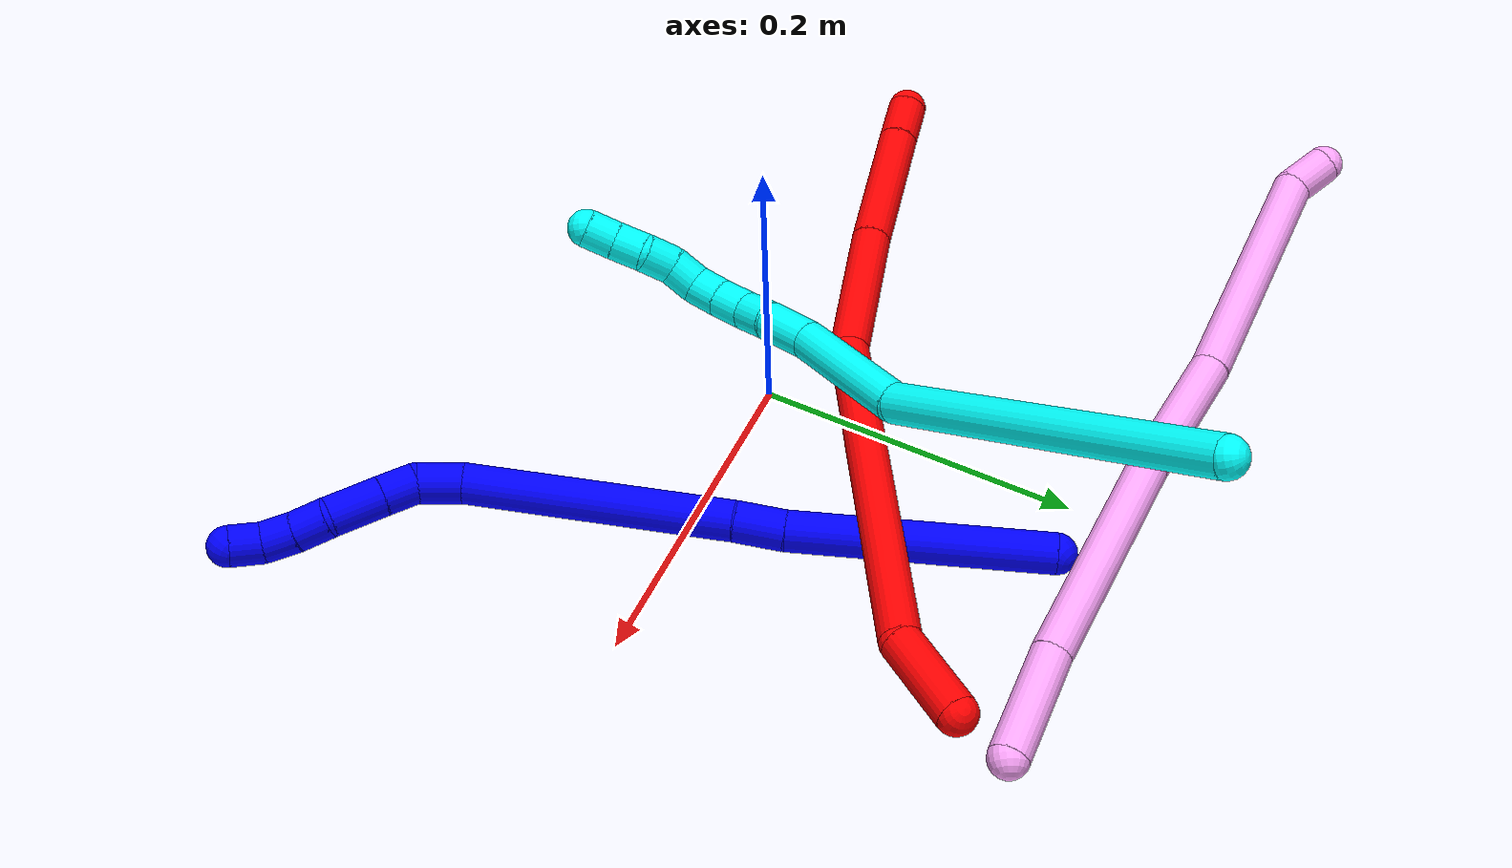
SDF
<sdf version="1.7">
 <world name="default">
  <model name="1">
   <static>0</static>
   <link name="1">
    <collision name="collision-cylinder-e_1_1_4">
     <pose>0.009369 -0.051583 0.060168 0.708725 0.117675 0.043581</pose>
     <geometry><cylinder><radius>0.0125</radius><length>0.15961</length></cylinder></geometry>
     <surface>
      <friction><ode><mu>1.16</mu><mu2>1.16</mu2><slip1>0</slip1><slip2>0</slip2></ode></friction>
      <contact><ode><kp>1e+06</kp><kd>1</kd><max_vel>0</max_vel><min_depth>0.001</min_depth></ode></contact>
     </surface>
    </collision>
    <visual name="visual-cylinder-e_1_1_4">
     <pose>0.009369 -0.051583 0.060168 0.708725 0.117675 0.043581</pose>
     <geometry><cylinder><radius>0.0125</radius><length>0.15961</length></cylinder></geometry>
     <material><ambient>0 0 1 1</ambient></material>
    </visual>
    <collision name="collision-cylinder-e_2_4_5">
     <pose>0.021256 -0.111806 0.132541 0.616037 0.166754 0.053162</pose>
     <geometry><cylinder><radius>0.0125</radius><length>0.030326</length></cylinder></geometry>
     <surface>
      <friction><ode><mu>1.16</mu><mu2>1.16</mu2><slip1>0</slip1><slip2>0</slip2></ode></friction>
      <contact><ode><kp>1e+06</kp><kd>1</kd><max_vel>0</max_vel><min_depth>0.001</min_depth></ode></contact>
     </surface>
    </collision>
    <visual name="visual-cylinder-e_2_4_5">
     <pose>0.021256 -0.111806 0.132541 0.616037 0.166754 0.053162</pose>
     <geometry><cylinder><radius>0.0125</radius><length>0.030326</length></cylinder></geometry>
     <material><ambient>0 0 1 1</ambient></material>
    </visual>
    <collision name="collision-cylinder-e_3_5_6">
     <pose>0.029131 -0.167474 0.212878 0.604143 0.06464 0.020149</pose>
     <geometry><cylinder><radius>0.0125</radius><length>0.16592</length></cylinder></geometry>
     <surface>
      <friction><ode><mu>1.16</mu><mu2>1.16</mu2><slip1>0</slip1><slip2>0</slip2></ode></friction>
      <contact><ode><kp>1e+06</kp><kd>1</kd><max_vel>0</max_vel><min_depth>0.001</min_depth></ode></contact>
     </surface>
    </collision>
    <visual name="visual-cylinder-e_3_5_6">
     <pose>0.029131 -0.167474 0.212878 0.604143 0.06464 0.020149</pose>
     <geometry><cylinder><radius>0.0125</radius><length>0.16592</length></cylinder></geometry>
     <material><ambient>0 0 1 1</ambient></material>
    </visual>
    <collision name="collision-cylinder-e_4_6_7">
     <pose>0.038065 -0.225424 0.289294 0.921947 0.255109 0.127223</pose>
     <geometry><cylinder><radius>0.0125</radius><length>0.028333</length></cylinder></geometry>
     <surface>
      <friction><ode><mu>1.16</mu><mu2>1.16</mu2><slip1>0</slip1><slip2>0</slip2></ode></friction>
      <contact><ode><kp>1e+06</kp><kd>1</kd><max_vel>0</max_vel><min_depth>0.001</min_depth></ode></contact>
     </surface>
    </collision>
    <visual name="visual-cylinder-e_4_6_7">
     <pose>0.038065 -0.225424 0.289294 0.921947 0.255109 0.127223</pose>
     <geometry><cylinder><radius>0.0125</radius><length>0.028333</length></cylinder></geometry>
     <material><ambient>0 0 1 1</ambient></material>
    </visual>
    <collision name="collision-cylinder-e_5_7_8">
     <pose>0.042715 -0.246571 0.300611 1.28237 0.100468 0.075016</pose>
     <geometry><cylinder><radius>0.0125</radius><length>0.021439</length></cylinder></geometry>
     <surface>
      <friction><ode><mu>1.16</mu><mu2>1.16</mu2><slip1>0</slip1><slip2>0</slip2></ode></friction>
      <contact><ode><kp>1e+06</kp><kd>1</kd><max_vel>0</max_vel><min_depth>0.001</min_depth></ode></contact>
     </surface>
    </collision>
    <visual name="visual-cylinder-e_5_7_8">
     <pose>0.042715 -0.246571 0.300611 1.28237 0.100468 0.075016</pose>
     <geometry><cylinder><radius>0.0125</radius><length>0.021439</length></cylinder></geometry>
     <material><ambient>0 0 1 1</ambient></material>
    </visual>
    <collision name="collision-cylinder-e_6_8_9">
     <pose>0.045321 -0.272715 0.308136 1.2958 0.092292 0.069876</pose>
     <geometry><cylinder><radius>0.0125</radius><length>0.033223</length></cylinder></geometry>
     <surface>
      <friction><ode><mu>1.16</mu><mu2>1.16</mu2><slip1>0</slip1><slip2>0</slip2></ode></friction>
      <contact><ode><kp>1e+06</kp><kd>1</kd><max_vel>0</max_vel><min_depth>0.001</min_depth></ode></contact>
     </surface>
    </collision>
    <visual name="visual-cylinder-e_6_8_9">
     <pose>0.045321 -0.272715 0.308136 1.2958 0.092292 0.069876</pose>
     <geometry><cylinder><radius>0.0125</radius><length>0.033223</length></cylinder></geometry>
     <material><ambient>0 0 1 1</ambient></material>
    </visual>
    <collision name="collision-cylinder-e_7_9_10">
     <pose>0.045185 -0.297734 0.317002 1.12268 -0.163666 -0.103056</pose>
     <geometry><cylinder><radius>0.0125</radius><length>0.020468</length></cylinder></geometry>
     <surface>
      <friction><ode><mu>1.16</mu><mu2>1.16</mu2><slip1>0</slip1><slip2>0</slip2></ode></friction>
      <contact><ode><kp>1e+06</kp><kd>1</kd><max_vel>0</max_vel><min_depth>0.001</min_depth></ode></contact>
     </surface>
    </collision>
    <visual name="visual-cylinder-e_7_9_10">
     <pose>0.045185 -0.297734 0.317002 1.12268 -0.163666 -0.103056</pose>
     <geometry><cylinder><radius>0.0125</radius><length>0.020468</length></cylinder></geometry>
     <material><ambient>0 0 1 1</ambient></material>
    </visual>
    <collision name="collision-cylinder-e_8_10_11">
     <pose>0.042504 -0.315732 0.326353 1.06082 -0.099034 -0.058111</pose>
     <geometry><cylinder><radius>0.0125</radius><length>0.02049</length></cylinder></geometry>
     <surface>
      <friction><ode><mu>1.16</mu><mu2>1.16</mu2><slip1>0</slip1><slip2>0</slip2></ode></friction>
      <contact><ode><kp>1e+06</kp><kd>1</kd><max_vel>0</max_vel><min_depth>0.001</min_depth></ode></contact>
     </surface>
    </collision>
    <visual name="visual-cylinder-e_8_10_11">
     <pose>0.042504 -0.315732 0.326353 1.06082 -0.099034 -0.058111</pose>
     <geometry><cylinder><radius>0.0125</radius><length>0.02049</length></cylinder></geometry>
     <material><ambient>0 0 1 1</ambient></material>
    </visual>
    <collision name="collision-cylinder-e_9_11_2">
     <pose>0.044214 -0.333122 0.336061 1.06251 0.273032 0.161089</pose>
     <geometry><cylinder><radius>0.0125</radius><length>0.020191</length></cylinder></geometry>
     <surface>
      <friction><ode><mu>1.16</mu><mu2>1.16</mu2><slip1>0</slip1><slip2>0</slip2></ode></friction>
      <contact><ode><kp>1e+06</kp><kd>1</kd><max_vel>0</max_vel><min_depth>0.001</min_depth></ode></contact>
     </surface>
    </collision>
    <visual name="visual-cylinder-e_9_11_2">
     <pose>0.044214 -0.333122 0.336061 1.06251 0.273032 0.161089</pose>
     <geometry><cylinder><radius>0.0125</radius><length>0.020191</length></cylinder></geometry>
     <material><ambient>0 0 1 1</ambient></material>
    </visual>
    <collision name="collision-sphere-2">
     <pose>0.046936 -0.341615 0.340793 0 -0 0</pose>
     <geometry><sphere><radius>0.0125</radius></sphere></geometry>
     <surface>
      <friction><ode><mu>1.16</mu><mu2>1.16</mu2><slip1>0</slip1><slip2>0</slip2></ode></friction>
      <contact><ode><kp>1e+06</kp><kd>1</kd><max_vel>0</max_vel><min_depth>0.001</min_depth></ode></contact>
     </surface>
    </collision>
    <visual name="visual-sphere-2">
     <pose>0.046936 -0.341615 0.340793 0 -0 0</pose>
     <geometry><sphere><radius>0.0125</radius></sphere></geometry>
     <material><ambient>0 0 1 1</ambient></material>
    </visual>
    <collision name="collision-sphere-11">
     <pose>0.041491 -0.324629 0.33133 0 -0 0</pose>
     <geometry><sphere><radius>0.0125</radius></sphere></geometry>
     <surface>
      <friction><ode><mu>1.16</mu><mu2>1.16</mu2><slip1>0</slip1><slip2>0</slip2></ode></friction>
      <contact><ode><kp>1e+06</kp><kd>1</kd><max_vel>0</max_vel><min_depth>0.001</min_depth></ode></contact>
     </surface>
    </collision>
    <visual name="visual-sphere-11">
     <pose>0.041491 -0.324629 0.33133 0 -0 0</pose>
     <geometry><sphere><radius>0.0125</radius></sphere></geometry>
     <material><ambient>0 0 1 1</ambient></material>
    </visual>
    <collision name="collision-sphere-10">
     <pose>0.043517 -0.306835 0.321377 0 -0 0</pose>
     <geometry><sphere><radius>0.0125</radius></sphere></geometry>
     <surface>
      <friction><ode><mu>1.16</mu><mu2>1.16</mu2><slip1>0</slip1><slip2>0</slip2></ode></friction>
      <contact><ode><kp>1e+06</kp><kd>1</kd><max_vel>0</max_vel><min_depth>0.001</min_depth></ode></contact>
     </surface>
    </collision>
    <visual name="visual-sphere-10">
     <pose>0.043517 -0.306835 0.321377 0 -0 0</pose>
     <geometry><sphere><radius>0.0125</radius></sphere></geometry>
     <material><ambient>0 0 1 1</ambient></material>
    </visual>
    <collision name="collision-sphere-9">
     <pose>0.046852 -0.288634 0.312627 0 -0 0</pose>
     <geometry><sphere><radius>0.0125</radius></sphere></geometry>
     <surface>
      <friction><ode><mu>1.16</mu><mu2>1.16</mu2><slip1>0</slip1><slip2>0</slip2></ode></friction>
      <contact><ode><kp>1e+06</kp><kd>1</kd><max_vel>0</max_vel><min_depth>0.001</min_depth></ode></contact>
     </surface>
    </collision>
    <visual name="visual-sphere-9">
     <pose>0.046852 -0.288634 0.312627 0 -0 0</pose>
     <geometry><sphere><radius>0.0125</radius></sphere></geometry>
     <material><ambient>0 0 1 1</ambient></material>
    </visual>
    <collision name="collision-sphere-4">
     <pose>0.018739 -0.103167 0.120337 0 -0 0</pose>
     <geometry><sphere><radius>0.0125</radius></sphere></geometry>
     <surface>
      <friction><ode><mu>1.16</mu><mu2>1.16</mu2><slip1>0</slip1><slip2>0</slip2></ode></friction>
      <contact><ode><kp>1e+06</kp><kd>1</kd><max_vel>0</max_vel><min_depth>0.001</min_depth></ode></contact>
     </surface>
    </collision>
    <visual name="visual-sphere-4">
     <pose>0.018739 -0.103167 0.120337 0 -0 0</pose>
     <geometry><sphere><radius>0.0125</radius></sphere></geometry>
     <material><ambient>0 0 1 1</ambient></material>
    </visual>
    <collision name="collision-sphere-1">
     <geometry><sphere><radius>0.0125</radius></sphere></geometry>
     <surface>
      <friction><ode><mu>1.16</mu><mu2>1.16</mu2><slip1>0</slip1><slip2>0</slip2></ode></friction>
      <contact><ode><kp>1e+06</kp><kd>1</kd><max_vel>0</max_vel><min_depth>0.001</min_depth></ode></contact>
     </surface>
    </collision>
    <visual name="visual-sphere-1">
     <geometry><sphere><radius>0.0125</radius></sphere></geometry>
     <material><ambient>0 0 1 1</ambient></material>
    </visual>
    <collision name="collision-sphere-8">
     <pose>0.04379 -0.256795 0.303644 0 -0 0</pose>
     <geometry><sphere><radius>0.0125</radius></sphere></geometry>
     <surface>
      <friction><ode><mu>1.16</mu><mu2>1.16</mu2><slip1>0</slip1><slip2>0</slip2></ode></friction>
      <contact><ode><kp>1e+06</kp><kd>1</kd><max_vel>0</max_vel><min_depth>0.001</min_depth></ode></contact>
     </surface>
    </collision>
    <visual name="visual-sphere-8">
     <pose>0.04379 -0.256795 0.303644 0 -0 0</pose>
     <geometry><sphere><radius>0.0125</radius></sphere></geometry>
     <material><ambient>0 0 1 1</ambient></material>
    </visual>
    <collision name="collision-sphere-5">
     <pose>0.023773 -0.120446 0.144745 0 -0 0</pose>
     <geometry><sphere><radius>0.0125</radius></sphere></geometry>
     <surface>
      <friction><ode><mu>1.16</mu><mu2>1.16</mu2><slip1>0</slip1><slip2>0</slip2></ode></friction>
      <contact><ode><kp>1e+06</kp><kd>1</kd><max_vel>0</max_vel><min_depth>0.001</min_depth></ode></contact>
     </surface>
    </collision>
    <visual name="visual-sphere-5">
     <pose>0.023773 -0.120446 0.144745 0 -0 0</pose>
     <geometry><sphere><radius>0.0125</radius></sphere></geometry>
     <material><ambient>0 0 1 1</ambient></material>
    </visual>
    <collision name="collision-sphere-6">
     <pose>0.03449 -0.214501 0.28101 0 -0 0</pose>
     <geometry><sphere><radius>0.0125</radius></sphere></geometry>
     <surface>
      <friction><ode><mu>1.16</mu><mu2>1.16</mu2><slip1>0</slip1><slip2>0</slip2></ode></friction>
      <contact><ode><kp>1e+06</kp><kd>1</kd><max_vel>0</max_vel><min_depth>0.001</min_depth></ode></contact>
     </surface>
    </collision>
    <visual name="visual-sphere-6">
     <pose>0.03449 -0.214501 0.28101 0 -0 0</pose>
     <geometry><sphere><radius>0.0125</radius></sphere></geometry>
     <material><ambient>0 0 1 1</ambient></material>
    </visual>
    <collision name="collision-sphere-7">
     <pose>0.04164 -0.236346 0.297577 0 -0 0</pose>
     <geometry><sphere><radius>0.0125</radius></sphere></geometry>
     <surface>
      <friction><ode><mu>1.16</mu><mu2>1.16</mu2><slip1>0</slip1><slip2>0</slip2></ode></friction>
      <contact><ode><kp>1e+06</kp><kd>1</kd><max_vel>0</max_vel><min_depth>0.001</min_depth></ode></contact>
     </surface>
    </collision>
    <visual name="visual-sphere-7">
     <pose>0.04164 -0.236346 0.297577 0 -0 0</pose>
     <geometry><sphere><radius>0.0125</radius></sphere></geometry>
     <material><ambient>0 0 1 1</ambient></material>
    </visual>
    <inertial>
     <pose>0.026324 -0.158868 0.187566 0 -0 0</pose>
     <mass>0.5</mass>
     <inertia>
      <ixx>0.000773</ixx>
      <ixy>0</ixy>
      <ixz>0</ixz>
      <iyy>0.000587</iyy>
      <iyz>0</iyz>
      <izz>0.000416</izz>
     </inertia>
    </inertial>
   </link>
   <pose>0.040309 0.20731 0.011522 2.86304 -1.46933 -1.63845</pose>
  </model>
  <model name="2">
   <static>0</static>
   <link name="2">
    <collision name="collision-cylinder-e_1_1_4">
     <pose>-0.014062 -0.019936 -0.013177 2.15486 -0.531861 -0.937749</pose>
     <geometry><cylinder><radius>0.0125</radius><length>0.055455</length></cylinder></geometry>
     <surface>
      <friction><ode><mu>1.16</mu><mu2>1.16</mu2><slip1>0</slip1><slip2>0</slip2></ode></friction>
      <contact><ode><kp>1e+06</kp><kd>1</kd><max_vel>0</max_vel><min_depth>0.001</min_depth></ode></contact>
     </surface>
    </collision>
    <visual name="visual-cylinder-e_1_1_4">
     <pose>-0.014062 -0.019936 -0.013177 2.15486 -0.531861 -0.937749</pose>
     <geometry><cylinder><radius>0.0125</radius><length>0.055455</length></cylinder></geometry>
     <material><ambient>1 0 0 1</ambient></material>
    </visual>
    <collision name="collision-cylinder-e_2_4_5">
     <pose>-0.123648 -0.088109 -0.081205 2.42026 -0.917981 -1.83781</pose>
     <geometry><cylinder><radius>0.0125</radius><length>0.240502</length></cylinder></geometry>
     <surface>
      <friction><ode><mu>1.16</mu><mu2>1.16</mu2><slip1>0</slip1><slip2>0</slip2></ode></friction>
      <contact><ode><kp>1e+06</kp><kd>1</kd><max_vel>0</max_vel><min_depth>0.001</min_depth></ode></contact>
     </surface>
    </collision>
    <visual name="visual-cylinder-e_2_4_5">
     <pose>-0.123648 -0.088109 -0.081205 2.42026 -0.917981 -1.83781</pose>
     <geometry><cylinder><radius>0.0125</radius><length>0.240502</length></cylinder></geometry>
     <material><ambient>1 0 0 1</ambient></material>
    </visual>
    <collision name="collision-cylinder-e_3_5_6">
     <pose>-0.261452 -0.147818 -0.14336 2.13776 -1.25957 -1.85073</pose>
     <geometry><cylinder><radius>0.0125</radius><length>0.088827</length></cylinder></geometry>
     <surface>
      <friction><ode><mu>1.16</mu><mu2>1.16</mu2><slip1>0</slip1><slip2>0</slip2></ode></friction>
      <contact><ode><kp>1e+06</kp><kd>1</kd><max_vel>0</max_vel><min_depth>0.001</min_depth></ode></contact>
     </surface>
    </collision>
    <visual name="visual-cylinder-e_3_5_6">
     <pose>-0.261452 -0.147818 -0.14336 2.13776 -1.25957 -1.85073</pose>
     <geometry><cylinder><radius>0.0125</radius><length>0.088827</length></cylinder></geometry>
     <material><ambient>1 0 0 1</ambient></material>
    </visual>
    <collision name="collision-cylinder-e_4_6_7">
     <pose>-0.345279 -0.168411 -0.156673 2.15333 -1.31374 -1.922</pose>
     <geometry><cylinder><radius>0.0125</radius><length>0.085916</length></cylinder></geometry>
     <surface>
      <friction><ode><mu>1.16</mu><mu2>1.16</mu2><slip1>0</slip1><slip2>0</slip2></ode></friction>
      <contact><ode><kp>1e+06</kp><kd>1</kd><max_vel>0</max_vel><min_depth>0.001</min_depth></ode></contact>
     </surface>
    </collision>
    <visual name="visual-cylinder-e_4_6_7">
     <pose>-0.345279 -0.168411 -0.156673 2.15333 -1.31374 -1.922</pose>
     <geometry><cylinder><radius>0.0125</radius><length>0.085916</length></cylinder></geometry>
     <material><ambient>1 0 0 1</ambient></material>
    </visual>
    <collision name="collision-cylinder-e_5_7_2">
     <pose>-0.401028 -0.180403 -0.164839 2.2152 -1.32303 -2.00083</pose>
     <geometry><cylinder><radius>0.0125</radius><length>0.0293</length></cylinder></geometry>
     <surface>
      <friction><ode><mu>1.16</mu><mu2>1.16</mu2><slip1>0</slip1><slip2>0</slip2></ode></friction>
      <contact><ode><kp>1e+06</kp><kd>1</kd><max_vel>0</max_vel><min_depth>0.001</min_depth></ode></contact>
     </surface>
    </collision>
    <visual name="visual-cylinder-e_5_7_2">
     <pose>-0.401028 -0.180403 -0.164839 2.2152 -1.32303 -2.00083</pose>
     <geometry><cylinder><radius>0.0125</radius><length>0.0293</length></cylinder></geometry>
     <material><ambient>1 0 0 1</ambient></material>
    </visual>
    <collision name="collision-sphere-2">
     <pose>-0.415231 -0.183275 -0.166997 0 -0 0</pose>
     <geometry><sphere><radius>0.0125</radius></sphere></geometry>
     <surface>
      <friction><ode><mu>1.16</mu><mu2>1.16</mu2><slip1>0</slip1><slip2>0</slip2></ode></friction>
      <contact><ode><kp>1e+06</kp><kd>1</kd><max_vel>0</max_vel><min_depth>0.001</min_depth></ode></contact>
     </surface>
    </collision>
    <visual name="visual-sphere-2">
     <pose>-0.415231 -0.183275 -0.166997 0 -0 0</pose>
     <geometry><sphere><radius>0.0125</radius></sphere></geometry>
     <material><ambient>1 0 0 1</ambient></material>
    </visual>
    <collision name="collision-sphere-7">
     <pose>-0.386825 -0.177531 -0.162681 0 -0 0</pose>
     <geometry><sphere><radius>0.0125</radius></sphere></geometry>
     <surface>
      <friction><ode><mu>1.16</mu><mu2>1.16</mu2><slip1>0</slip1><slip2>0</slip2></ode></friction>
      <contact><ode><kp>1e+06</kp><kd>1</kd><max_vel>0</max_vel><min_depth>0.001</min_depth></ode></contact>
     </surface>
    </collision>
    <visual name="visual-sphere-7">
     <pose>-0.386825 -0.177531 -0.162681 0 -0 0</pose>
     <geometry><sphere><radius>0.0125</radius></sphere></geometry>
     <material><ambient>1 0 0 1</ambient></material>
    </visual>
    <collision name="collision-sphere-6">
     <pose>-0.303732 -0.159291 -0.150664 0 -0 0</pose>
     <geometry><sphere><radius>0.0125</radius></sphere></geometry>
     <surface>
      <friction><ode><mu>1.16</mu><mu2>1.16</mu2><slip1>0</slip1><slip2>0</slip2></ode></friction>
      <contact><ode><kp>1e+06</kp><kd>1</kd><max_vel>0</max_vel><min_depth>0.001</min_depth></ode></contact>
     </surface>
    </collision>
    <visual name="visual-sphere-6">
     <pose>-0.303732 -0.159291 -0.150664 0 -0 0</pose>
     <geometry><sphere><radius>0.0125</radius></sphere></geometry>
     <material><ambient>1 0 0 1</ambient></material>
    </visual>
    <collision name="collision-sphere-5">
     <pose>-0.219173 -0.136346 -0.136055 0 -0 0</pose>
     <geometry><sphere><radius>0.0125</radius></sphere></geometry>
     <surface>
      <friction><ode><mu>1.16</mu><mu2>1.16</mu2><slip1>0</slip1><slip2>0</slip2></ode></friction>
      <contact><ode><kp>1e+06</kp><kd>1</kd><max_vel>0</max_vel><min_depth>0.001</min_depth></ode></contact>
     </surface>
    </collision>
    <visual name="visual-sphere-5">
     <pose>-0.219173 -0.136346 -0.136055 0 -0 0</pose>
     <geometry><sphere><radius>0.0125</radius></sphere></geometry>
     <material><ambient>1 0 0 1</ambient></material>
    </visual>
    <collision name="collision-sphere-1">
     <geometry><sphere><radius>0.0125</radius></sphere></geometry>
     <surface>
      <friction><ode><mu>1.16</mu><mu2>1.16</mu2><slip1>0</slip1><slip2>0</slip2></ode></friction>
      <contact><ode><kp>1e+06</kp><kd>1</kd><max_vel>0</max_vel><min_depth>0.001</min_depth></ode></contact>
     </surface>
    </collision>
    <visual name="visual-sphere-1">
     <geometry><sphere><radius>0.0125</radius></sphere></geometry>
     <material><ambient>1 0 0 1</ambient></material>
    </visual>
    <collision name="collision-sphere-4">
     <pose>-0.028123 -0.039871 -0.026355 0 -0 0</pose>
     <geometry><sphere><radius>0.0125</radius></sphere></geometry>
     <surface>
      <friction><ode><mu>1.16</mu><mu2>1.16</mu2><slip1>0</slip1><slip2>0</slip2></ode></friction>
      <contact><ode><kp>1e+06</kp><kd>1</kd><max_vel>0</max_vel><min_depth>0.001</min_depth></ode></contact>
     </surface>
    </collision>
    <visual name="visual-sphere-4">
     <pose>-0.028123 -0.039871 -0.026355 0 -0 0</pose>
     <geometry><sphere><radius>0.0125</radius></sphere></geometry>
     <material><ambient>1 0 0 1</ambient></material>
    </visual>
    <inertial>
     <pose>-0.190313 -0.110362 -0.102571 0 -0 0</pose>
     <mass>0.5</mass>
     <inertia>
      <ixx>-0.00095</ixx>
      <ixy>0</ixy>
      <ixz>0</ixz>
      <iyy>0.000194</iyy>
      <iyz>0</iyz>
      <izz>0.001549</izz>
     </inertia>
    </inertial>
   </link>
   <pose>0.187995 0.203329 0.06188 -0.38402 0.114901 -0.035967</pose>
  </model>
  <model name="3">
   <static>0</static>
   <link name="3">
    <collision name="collision-cylinder-e_1_1_4">
     <pose>-0.028143 -0.002642 -0.112125 3.11803 -0.245846 -2.95148</pose>
     <geometry><cylinder><radius>0.0125</radius><length>0.231267</length></cylinder></geometry>
     <surface>
      <friction><ode><mu>1.16</mu><mu2>1.16</mu2><slip1>0</slip1><slip2>0</slip2></ode></friction>
      <contact><ode><kp>1e+06</kp><kd>1</kd><max_vel>0</max_vel><min_depth>0.001</min_depth></ode></contact>
     </surface>
    </collision>
    <visual name="visual-cylinder-e_1_1_4">
     <pose>-0.028143 -0.002642 -0.112125 3.11803 -0.245846 -2.95148</pose>
     <geometry><cylinder><radius>0.0125</radius><length>0.231267</length></cylinder></geometry>
     <material><ambient>0.003922 1 0.996078 1</ambient></material>
    </visual>
    <collision name="collision-cylinder-e_2_4_5">
     <pose>-0.080542 -0.011814 -0.262181 2.97111 -0.562366 -2.56632</pose>
     <geometry><cylinder><radius>0.0125</radius><length>0.090988</length></cylinder></geometry>
     <surface>
      <friction><ode><mu>1.16</mu><mu2>1.16</mu2><slip1>0</slip1><slip2>0</slip2></ode></friction>
      <contact><ode><kp>1e+06</kp><kd>1</kd><max_vel>0</max_vel><min_depth>0.001</min_depth></ode></contact>
     </surface>
    </collision>
    <visual name="visual-cylinder-e_2_4_5">
     <pose>-0.080542 -0.011814 -0.262181 2.97111 -0.562366 -2.56632</pose>
     <geometry><cylinder><radius>0.0125</radius><length>0.090988</length></cylinder></geometry>
     <material><ambient>0.003922 1 0.996078 1</ambient></material>
    </visual>
    <collision name="collision-cylinder-e_3_5_6">
     <pose>-0.110775 -0.023143 -0.315104 2.83179 -0.362802 -1.73104</pose>
     <geometry><cylinder><radius>0.0125</radius><length>0.033677</length></cylinder></geometry>
     <surface>
      <friction><ode><mu>1.16</mu><mu2>1.16</mu2><slip1>0</slip1><slip2>0</slip2></ode></friction>
      <contact><ode><kp>1e+06</kp><kd>1</kd><max_vel>0</max_vel><min_depth>0.001</min_depth></ode></contact>
     </surface>
    </collision>
    <visual name="visual-cylinder-e_3_5_6">
     <pose>-0.110775 -0.023143 -0.315104 2.83179 -0.362802 -1.73104</pose>
     <geometry><cylinder><radius>0.0125</radius><length>0.033677</length></cylinder></geometry>
     <material><ambient>0.003922 1 0.996078 1</ambient></material>
    </visual>
    <collision name="collision-cylinder-e_4_6_7">
     <pose>-0.121392 -0.029242 -0.340567 3.01809 -0.414442 -2.56955</pose>
     <geometry><cylinder><radius>0.0125</radius><length>0.023053</length></cylinder></geometry>
     <surface>
      <friction><ode><mu>1.16</mu><mu2>1.16</mu2><slip1>0</slip1><slip2>0</slip2></ode></friction>
      <contact><ode><kp>1e+06</kp><kd>1</kd><max_vel>0</max_vel><min_depth>0.001</min_depth></ode></contact>
     </surface>
    </collision>
    <visual name="visual-cylinder-e_4_6_7">
     <pose>-0.121392 -0.029242 -0.340567 3.01809 -0.414442 -2.56955</pose>
     <geometry><cylinder><radius>0.0125</radius><length>0.023053</length></cylinder></geometry>
     <material><ambient>0.003922 1 0.996078 1</ambient></material>
    </visual>
    <collision name="collision-cylinder-e_5_7_8">
     <pose>-0.128687 -0.034981 -0.360083 2.6854 -0.257458 -1.01735</pose>
     <geometry><cylinder><radius>0.0125</radius><length>0.020838</length></cylinder></geometry>
     <surface>
      <friction><ode><mu>1.16</mu><mu2>1.16</mu2><slip1>0</slip1><slip2>0</slip2></ode></friction>
      <contact><ode><kp>1e+06</kp><kd>1</kd><max_vel>0</max_vel><min_depth>0.001</min_depth></ode></contact>
     </surface>
    </collision>
    <visual name="visual-cylinder-e_5_7_8">
     <pose>-0.128687 -0.034981 -0.360083 2.6854 -0.257458 -1.01735</pose>
     <geometry><cylinder><radius>0.0125</radius><length>0.020838</length></cylinder></geometry>
     <material><ambient>0.003922 1 0.996078 1</ambient></material>
    </visual>
    <collision name="collision-cylinder-e_6_8_9">
     <pose>-0.133946 -0.044326 -0.377503 2.61157 -0.262257 -0.904701</pose>
     <geometry><cylinder><radius>0.0125</radius><length>0.0201</length></cylinder></geometry>
     <surface>
      <friction><ode><mu>1.16</mu><mu2>1.16</mu2><slip1>0</slip1><slip2>0</slip2></ode></friction>
      <contact><ode><kp>1e+06</kp><kd>1</kd><max_vel>0</max_vel><min_depth>0.001</min_depth></ode></contact>
     </surface>
    </collision>
    <visual name="visual-cylinder-e_6_8_9">
     <pose>-0.133946 -0.044326 -0.377503 2.61157 -0.262257 -0.904701</pose>
     <geometry><cylinder><radius>0.0125</radius><length>0.0201</length></cylinder></geometry>
     <material><ambient>0.003922 1 0.996078 1</ambient></material>
    </visual>
    <collision name="collision-cylinder-e_7_9_10">
     <pose>-0.137749 -0.057747 -0.391048 2.11657 -0.119672 -0.212145</pose>
     <geometry><cylinder><radius>0.0125</radius><length>0.020064</length></cylinder></geometry>
     <surface>
      <friction><ode><mu>1.16</mu><mu2>1.16</mu2><slip1>0</slip1><slip2>0</slip2></ode></friction>
      <contact><ode><kp>1e+06</kp><kd>1</kd><max_vel>0</max_vel><min_depth>0.001</min_depth></ode></contact>
     </surface>
    </collision>
    <visual name="visual-cylinder-e_7_9_10">
     <pose>-0.137749 -0.057747 -0.391048 2.11657 -0.119672 -0.212145</pose>
     <geometry><cylinder><radius>0.0125</radius><length>0.020064</length></cylinder></geometry>
     <material><ambient>0.003922 1 0.996078 1</ambient></material>
    </visual>
    <collision name="collision-cylinder-e_8_10_11">
     <pose>-0.136866 -0.0747 -0.401167 2.10112 0.2095 0.363002</pose>
     <geometry><cylinder><radius>0.0125</radius><length>0.020005</length></cylinder></geometry>
     <surface>
      <friction><ode><mu>1.16</mu><mu2>1.16</mu2><slip1>0</slip1><slip2>0</slip2></ode></friction>
      <contact><ode><kp>1e+06</kp><kd>1</kd><max_vel>0</max_vel><min_depth>0.001</min_depth></ode></contact>
     </surface>
    </collision>
    <visual name="visual-cylinder-e_8_10_11">
     <pose>-0.136866 -0.0747 -0.401167 2.10112 0.2095 0.363002</pose>
     <geometry><cylinder><radius>0.0125</radius><length>0.020005</length></cylinder></geometry>
     <material><ambient>0.003922 1 0.996078 1</ambient></material>
    </visual>
    <collision name="collision-cylinder-e_9_11_12">
     <pose>-0.134669 -0.089691 -0.413671 2.42721 0.011711 0.031379</pose>
     <geometry><cylinder><radius>0.0125</radius><length>0.020001</length></cylinder></geometry>
     <surface>
      <friction><ode><mu>1.16</mu><mu2>1.16</mu2><slip1>0</slip1><slip2>0</slip2></ode></friction>
      <contact><ode><kp>1e+06</kp><kd>1</kd><max_vel>0</max_vel><min_depth>0.001</min_depth></ode></contact>
     </surface>
    </collision>
    <visual name="visual-cylinder-e_9_11_12">
     <pose>-0.134669 -0.089691 -0.413671 2.42721 0.011711 0.031379</pose>
     <geometry><cylinder><radius>0.0125</radius><length>0.020001</length></cylinder></geometry>
     <material><ambient>0.003922 1 0.996078 1</ambient></material>
    </visual>
    <collision name="collision-cylinder-e_10_12_2">
     <pose>-0.133562 -0.103883 -0.427605 2.26648 0.099101 0.211231</pose>
     <geometry><cylinder><radius>0.0125</radius><length>0.020006</length></cylinder></geometry>
     <surface>
      <friction><ode><mu>1.16</mu><mu2>1.16</mu2><slip1>0</slip1><slip2>0</slip2></ode></friction>
      <contact><ode><kp>1e+06</kp><kd>1</kd><max_vel>0</max_vel><min_depth>0.001</min_depth></ode></contact>
     </surface>
    </collision>
    <visual name="visual-cylinder-e_10_12_2">
     <pose>-0.133562 -0.103883 -0.427605 2.26648 0.099101 0.211231</pose>
     <geometry><cylinder><radius>0.0125</radius><length>0.020006</length></cylinder></geometry>
     <material><ambient>0.003922 1 0.996078 1</ambient></material>
    </visual>
    <collision name="collision-sphere-2">
     <pose>-0.132573 -0.111524 -0.433984 0 -0 0</pose>
     <geometry><sphere><radius>0.0125</radius></sphere></geometry>
     <surface>
      <friction><ode><mu>1.16</mu><mu2>1.16</mu2><slip1>0</slip1><slip2>0</slip2></ode></friction>
      <contact><ode><kp>1e+06</kp><kd>1</kd><max_vel>0</max_vel><min_depth>0.001</min_depth></ode></contact>
     </surface>
    </collision>
    <visual name="visual-sphere-2">
     <pose>-0.132573 -0.111524 -0.433984 0 -0 0</pose>
     <geometry><sphere><radius>0.0125</radius></sphere></geometry>
     <material><ambient>0.003922 1 0.996078 1</ambient></material>
    </visual>
    <collision name="collision-sphere-12">
     <pose>-0.134552 -0.096243 -0.421225 0 -0 0</pose>
     <geometry><sphere><radius>0.0125</radius></sphere></geometry>
     <surface>
      <friction><ode><mu>1.16</mu><mu2>1.16</mu2><slip1>0</slip1><slip2>0</slip2></ode></friction>
      <contact><ode><kp>1e+06</kp><kd>1</kd><max_vel>0</max_vel><min_depth>0.001</min_depth></ode></contact>
     </surface>
    </collision>
    <visual name="visual-sphere-12">
     <pose>-0.134552 -0.096243 -0.421225 0 -0 0</pose>
     <geometry><sphere><radius>0.0125</radius></sphere></geometry>
     <material><ambient>0.003922 1 0.996078 1</ambient></material>
    </visual>
    <collision name="collision-sphere-11">
     <pose>-0.134786 -0.08314 -0.406116 0 -0 0</pose>
     <geometry><sphere><radius>0.0125</radius></sphere></geometry>
     <surface>
      <friction><ode><mu>1.16</mu><mu2>1.16</mu2><slip1>0</slip1><slip2>0</slip2></ode></friction>
      <contact><ode><kp>1e+06</kp><kd>1</kd><max_vel>0</max_vel><min_depth>0.001</min_depth></ode></contact>
     </surface>
    </collision>
    <visual name="visual-sphere-11">
     <pose>-0.134786 -0.08314 -0.406116 0 -0 0</pose>
     <geometry><sphere><radius>0.0125</radius></sphere></geometry>
     <material><ambient>0.003922 1 0.996078 1</ambient></material>
    </visual>
    <collision name="collision-sphere-10">
     <pose>-0.138947 -0.06626 -0.396218 0 -0 0</pose>
     <geometry><sphere><radius>0.0125</radius></sphere></geometry>
     <surface>
      <friction><ode><mu>1.16</mu><mu2>1.16</mu2><slip1>0</slip1><slip2>0</slip2></ode></friction>
      <contact><ode><kp>1e+06</kp><kd>1</kd><max_vel>0</max_vel><min_depth>0.001</min_depth></ode></contact>
     </surface>
    </collision>
    <visual name="visual-sphere-10">
     <pose>-0.138947 -0.06626 -0.396218 0 -0 0</pose>
     <geometry><sphere><radius>0.0125</radius></sphere></geometry>
     <material><ambient>0.003922 1 0.996078 1</ambient></material>
    </visual>
    <collision name="collision-sphere-9">
     <pose>-0.136551 -0.049234 -0.385878 0 -0 0</pose>
     <geometry><sphere><radius>0.0125</radius></sphere></geometry>
     <surface>
      <friction><ode><mu>1.16</mu><mu2>1.16</mu2><slip1>0</slip1><slip2>0</slip2></ode></friction>
      <contact><ode><kp>1e+06</kp><kd>1</kd><max_vel>0</max_vel><min_depth>0.001</min_depth></ode></contact>
     </surface>
    </collision>
    <visual name="visual-sphere-9">
     <pose>-0.136551 -0.049234 -0.385878 0 -0 0</pose>
     <geometry><sphere><radius>0.0125</radius></sphere></geometry>
     <material><ambient>0.003922 1 0.996078 1</ambient></material>
    </visual>
    <collision name="collision-sphere-4">
     <pose>-0.056285 -0.005284 -0.224251 0 -0 0</pose>
     <geometry><sphere><radius>0.0125</radius></sphere></geometry>
     <surface>
      <friction><ode><mu>1.16</mu><mu2>1.16</mu2><slip1>0</slip1><slip2>0</slip2></ode></friction>
      <contact><ode><kp>1e+06</kp><kd>1</kd><max_vel>0</max_vel><min_depth>0.001</min_depth></ode></contact>
     </surface>
    </collision>
    <visual name="visual-sphere-4">
     <pose>-0.056285 -0.005284 -0.224251 0 -0 0</pose>
     <geometry><sphere><radius>0.0125</radius></sphere></geometry>
     <material><ambient>0.003922 1 0.996078 1</ambient></material>
    </visual>
    <collision name="collision-sphere-1">
     <geometry><sphere><radius>0.0125</radius></sphere></geometry>
     <surface>
      <friction><ode><mu>1.16</mu><mu2>1.16</mu2><slip1>0</slip1><slip2>0</slip2></ode></friction>
      <contact><ode><kp>1e+06</kp><kd>1</kd><max_vel>0</max_vel><min_depth>0.001</min_depth></ode></contact>
     </surface>
    </collision>
    <visual name="visual-sphere-1">
     <geometry><sphere><radius>0.0125</radius></sphere></geometry>
     <material><ambient>0.003922 1 0.996078 1</ambient></material>
    </visual>
    <collision name="collision-sphere-8">
     <pose>-0.13134 -0.039419 -0.369128 0 -0 0</pose>
     <geometry><sphere><radius>0.0125</radius></sphere></geometry>
     <surface>
      <friction><ode><mu>1.16</mu><mu2>1.16</mu2><slip1>0</slip1><slip2>0</slip2></ode></friction>
      <contact><ode><kp>1e+06</kp><kd>1</kd><max_vel>0</max_vel><min_depth>0.001</min_depth></ode></contact>
     </surface>
    </collision>
    <visual name="visual-sphere-8">
     <pose>-0.13134 -0.039419 -0.369128 0 -0 0</pose>
     <geometry><sphere><radius>0.0125</radius></sphere></geometry>
     <material><ambient>0.003922 1 0.996078 1</ambient></material>
    </visual>
    <collision name="collision-sphere-5">
     <pose>-0.104799 -0.018344 -0.30011 0 -0 0</pose>
     <geometry><sphere><radius>0.0125</radius></sphere></geometry>
     <surface>
      <friction><ode><mu>1.16</mu><mu2>1.16</mu2><slip1>0</slip1><slip2>0</slip2></ode></friction>
      <contact><ode><kp>1e+06</kp><kd>1</kd><max_vel>0</max_vel><min_depth>0.001</min_depth></ode></contact>
     </surface>
    </collision>
    <visual name="visual-sphere-5">
     <pose>-0.104799 -0.018344 -0.30011 0 -0 0</pose>
     <geometry><sphere><radius>0.0125</radius></sphere></geometry>
     <material><ambient>0.003922 1 0.996078 1</ambient></material>
    </visual>
    <collision name="collision-sphere-6">
     <pose>-0.116751 -0.027942 -0.330097 0 -0 0</pose>
     <geometry><sphere><radius>0.0125</radius></sphere></geometry>
     <surface>
      <friction><ode><mu>1.16</mu><mu2>1.16</mu2><slip1>0</slip1><slip2>0</slip2></ode></friction>
      <contact><ode><kp>1e+06</kp><kd>1</kd><max_vel>0</max_vel><min_depth>0.001</min_depth></ode></contact>
     </surface>
    </collision>
    <visual name="visual-sphere-6">
     <pose>-0.116751 -0.027942 -0.330097 0 -0 0</pose>
     <geometry><sphere><radius>0.0125</radius></sphere></geometry>
     <material><ambient>0.003922 1 0.996078 1</ambient></material>
    </visual>
    <collision name="collision-sphere-7">
     <pose>-0.126034 -0.030542 -0.351038 0 -0 0</pose>
     <geometry><sphere><radius>0.0125</radius></sphere></geometry>
     <surface>
      <friction><ode><mu>1.16</mu><mu2>1.16</mu2><slip1>0</slip1><slip2>0</slip2></ode></friction>
      <contact><ode><kp>1e+06</kp><kd>1</kd><max_vel>0</max_vel><min_depth>0.001</min_depth></ode></contact>
     </surface>
    </collision>
    <visual name="visual-sphere-7">
     <pose>-0.126034 -0.030542 -0.351038 0 -0 0</pose>
     <geometry><sphere><radius>0.0125</radius></sphere></geometry>
     <material><ambient>0.003922 1 0.996078 1</ambient></material>
    </visual>
    <inertial>
     <pose>-0.073214 -0.022569 -0.232081 0 -0 0</pose>
     <mass>0.5</mass>
     <inertia>
      <ixx>-0.001271</ixx>
      <ixy>0</ixy>
      <ixz>0</ixz>
      <iyy>0.000842</iyy>
      <iyz>0</iyz>
      <izz>0.000298</izz>
     </inertia>
    </inertial>
   </link>
   <pose>0.050815 0.28828 0.173105 -1.02819 -0.033788 0.080893</pose>
  </model>
  <model name="4">
   <static>0</static>
   <link name="4">
    <collision name="collision-cylinder-e_1_1_4">
     <pose>-0.016565 7.6e-05 0.031661 -0.002413 -0.482048 0.000593</pose>
     <geometry><cylinder><radius>0.0125</radius><length>0.071465</length></cylinder></geometry>
     <surface>
      <friction><ode><mu>1.16</mu><mu2>1.16</mu2><slip1>0</slip1><slip2>0</slip2></ode></friction>
      <contact><ode><kp>1e+06</kp><kd>1</kd><max_vel>0</max_vel><min_depth>0.001</min_depth></ode></contact>
     </surface>
    </collision>
    <visual name="visual-cylinder-e_1_1_4">
     <pose>-0.016565 7.6e-05 0.031661 -0.002413 -0.482048 0.000593</pose>
     <geometry><cylinder><radius>0.0125</radius><length>0.071465</length></cylinder></geometry>
     <material><ambient>1 0.65098 0.996078 1</ambient></material>
    </visual>
    <collision name="collision-cylinder-e_2_4_5">
     <pose>-0.069874 0.004847 0.124976 -0.075991 -0.536159 0.020883</pose>
     <geometry><cylinder><radius>0.0125</radius><length>0.143854</length></cylinder></geometry>
     <surface>
      <friction><ode><mu>1.16</mu><mu2>1.16</mu2><slip1>0</slip1><slip2>0</slip2></ode></friction>
      <contact><ode><kp>1e+06</kp><kd>1</kd><max_vel>0</max_vel><min_depth>0.001</min_depth></ode></contact>
     </surface>
    </collision>
    <visual name="visual-cylinder-e_2_4_5">
     <pose>-0.069874 0.004847 0.124976 -0.075991 -0.536159 0.020883</pose>
     <geometry><cylinder><radius>0.0125</radius><length>0.143854</length></cylinder></geometry>
     <material><ambient>1 0.65098 0.996078 1</ambient></material>
    </visual>
    <collision name="collision-cylinder-e_3_5_6">
     <pose>-0.131799 0.013143 0.223311 -0.097887 -0.599415 0.030271</pose>
     <geometry><cylinder><radius>0.0125</radius><length>0.089275</length></cylinder></geometry>
     <surface>
      <friction><ode><mu>1.16</mu><mu2>1.16</mu2><slip1>0</slip1><slip2>0</slip2></ode></friction>
      <contact><ode><kp>1e+06</kp><kd>1</kd><max_vel>0</max_vel><min_depth>0.001</min_depth></ode></contact>
     </surface>
    </collision>
    <visual name="visual-cylinder-e_3_5_6">
     <pose>-0.131799 0.013143 0.223311 -0.097887 -0.599415 0.030271</pose>
     <geometry><cylinder><radius>0.0125</radius><length>0.089275</length></cylinder></geometry>
     <material><ambient>1 0.65098 0.996078 1</ambient></material>
    </visual>
    <collision name="collision-cylinder-e_4_6_7">
     <pose>-0.196996 0.021563 0.333032 -0.065866 -0.500261 0.016833</pose>
     <geometry><cylinder><radius>0.0125</radius><length>0.166847</length></cylinder></geometry>
     <surface>
      <friction><ode><mu>1.16</mu><mu2>1.16</mu2><slip1>0</slip1><slip2>0</slip2></ode></friction>
      <contact><ode><kp>1e+06</kp><kd>1</kd><max_vel>0</max_vel><min_depth>0.001</min_depth></ode></contact>
     </surface>
    </collision>
    <visual name="visual-cylinder-e_4_6_7">
     <pose>-0.196996 0.021563 0.333032 -0.065866 -0.500261 0.016833</pose>
     <geometry><cylinder><radius>0.0125</radius><length>0.166847</length></cylinder></geometry>
     <material><ambient>1 0.65098 0.996078 1</ambient></material>
    </visual>
    <collision name="collision-cylinder-e_5_7_2">
     <pose>-0.247201 0.031859 0.414445 -0.579434 -0.794643 0.2489</pose>
     <geometry><cylinder><radius>0.0125</radius><length>0.02856</length></cylinder></geometry>
     <surface>
      <friction><ode><mu>1.16</mu><mu2>1.16</mu2><slip1>0</slip1><slip2>0</slip2></ode></friction>
      <contact><ode><kp>1e+06</kp><kd>1</kd><max_vel>0</max_vel><min_depth>0.001</min_depth></ode></contact>
     </surface>
    </collision>
    <visual name="visual-cylinder-e_5_7_2">
     <pose>-0.247201 0.031859 0.414445 -0.579434 -0.794643 0.2489</pose>
     <geometry><cylinder><radius>0.0125</radius><length>0.02856</length></cylinder></geometry>
     <material><ambient>1 0.65098 0.996078 1</ambient></material>
    </visual>
    <collision name="collision-sphere-2">
     <pose>-0.257391 0.037336 0.422815 0 -0 0</pose>
     <geometry><sphere><radius>0.0125</radius></sphere></geometry>
     <surface>
      <friction><ode><mu>1.16</mu><mu2>1.16</mu2><slip1>0</slip1><slip2>0</slip2></ode></friction>
      <contact><ode><kp>1e+06</kp><kd>1</kd><max_vel>0</max_vel><min_depth>0.001</min_depth></ode></contact>
     </surface>
    </collision>
    <visual name="visual-sphere-2">
     <pose>-0.257391 0.037336 0.422815 0 -0 0</pose>
     <geometry><sphere><radius>0.0125</radius></sphere></geometry>
     <material><ambient>1 0.65098 0.996078 1</ambient></material>
    </visual>
    <collision name="collision-sphere-7">
     <pose>-0.237011 0.026381 0.406074 0 -0 0</pose>
     <geometry><sphere><radius>0.0125</radius></sphere></geometry>
     <surface>
      <friction><ode><mu>1.16</mu><mu2>1.16</mu2><slip1>0</slip1><slip2>0</slip2></ode></friction>
      <contact><ode><kp>1e+06</kp><kd>1</kd><max_vel>0</max_vel><min_depth>0.001</min_depth></ode></contact>
     </surface>
    </collision>
    <visual name="visual-sphere-7">
     <pose>-0.237011 0.026381 0.406074 0 -0 0</pose>
     <geometry><sphere><radius>0.0125</radius></sphere></geometry>
     <material><ambient>1 0.65098 0.996078 1</ambient></material>
    </visual>
    <collision name="collision-sphere-6">
     <pose>-0.156982 0.016745 0.259991 0 -0 0</pose>
     <geometry><sphere><radius>0.0125</radius></sphere></geometry>
     <surface>
      <friction><ode><mu>1.16</mu><mu2>1.16</mu2><slip1>0</slip1><slip2>0</slip2></ode></friction>
      <contact><ode><kp>1e+06</kp><kd>1</kd><max_vel>0</max_vel><min_depth>0.001</min_depth></ode></contact>
     </surface>
    </collision>
    <visual name="visual-sphere-6">
     <pose>-0.156982 0.016745 0.259991 0 -0 0</pose>
     <geometry><sphere><radius>0.0125</radius></sphere></geometry>
     <material><ambient>1 0.65098 0.996078 1</ambient></material>
    </visual>
    <collision name="collision-sphere-5">
     <pose>-0.106617 0.009541 0.186632 0 -0 0</pose>
     <geometry><sphere><radius>0.0125</radius></sphere></geometry>
     <surface>
      <friction><ode><mu>1.16</mu><mu2>1.16</mu2><slip1>0</slip1><slip2>0</slip2></ode></friction>
      <contact><ode><kp>1e+06</kp><kd>1</kd><max_vel>0</max_vel><min_depth>0.001</min_depth></ode></contact>
     </surface>
    </collision>
    <visual name="visual-sphere-5">
     <pose>-0.106617 0.009541 0.186632 0 -0 0</pose>
     <geometry><sphere><radius>0.0125</radius></sphere></geometry>
     <material><ambient>1 0.65098 0.996078 1</ambient></material>
    </visual>
    <collision name="collision-sphere-1">
     <geometry><sphere><radius>0.0125</radius></sphere></geometry>
     <surface>
      <friction><ode><mu>1.16</mu><mu2>1.16</mu2><slip1>0</slip1><slip2>0</slip2></ode></friction>
      <contact><ode><kp>1e+06</kp><kd>1</kd><max_vel>0</max_vel><min_depth>0.001</min_depth></ode></contact>
     </surface>
    </collision>
    <visual name="visual-sphere-1">
     <geometry><sphere><radius>0.0125</radius></sphere></geometry>
     <material><ambient>1 0.65098 0.996078 1</ambient></material>
    </visual>
    <collision name="collision-sphere-4">
     <pose>-0.033131 0.000153 0.063321 0 -0 0</pose>
     <geometry><sphere><radius>0.0125</radius></sphere></geometry>
     <surface>
      <friction><ode><mu>1.16</mu><mu2>1.16</mu2><slip1>0</slip1><slip2>0</slip2></ode></friction>
      <contact><ode><kp>1e+06</kp><kd>1</kd><max_vel>0</max_vel><min_depth>0.001</min_depth></ode></contact>
     </surface>
    </collision>
    <visual name="visual-sphere-4">
     <pose>-0.033131 0.000153 0.063321 0 -0 0</pose>
     <geometry><sphere><radius>0.0125</radius></sphere></geometry>
     <material><ambient>1 0.65098 0.996078 1</ambient></material>
    </visual>
    <inertial>
     <pose>-0.12586 0.012767 0.215158 0 -0 0</pose>
     <mass>0.5</mass>
     <inertia>
      <ixx>0.000639</ixx>
      <ixy>0</ixy>
      <ixz>0</ixz>
      <iyy>0.00076</iyy>
      <iyz>0</iyz>
      <izz>0.000359</izz>
     </inertia>
    </inertial>
   </link>
   <pose>0.176325 0.232188 0.014403 1.36734 -0.430481 -1.0097</pose>
  </model>
 </world>
</sdf>
